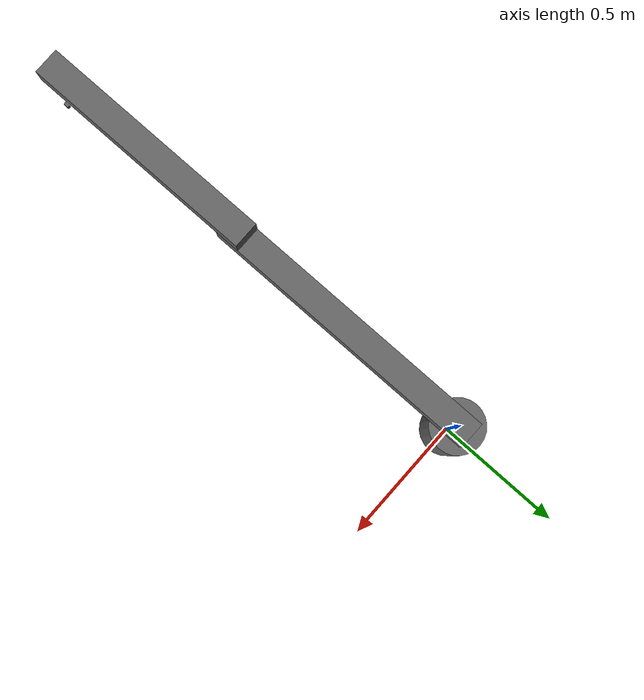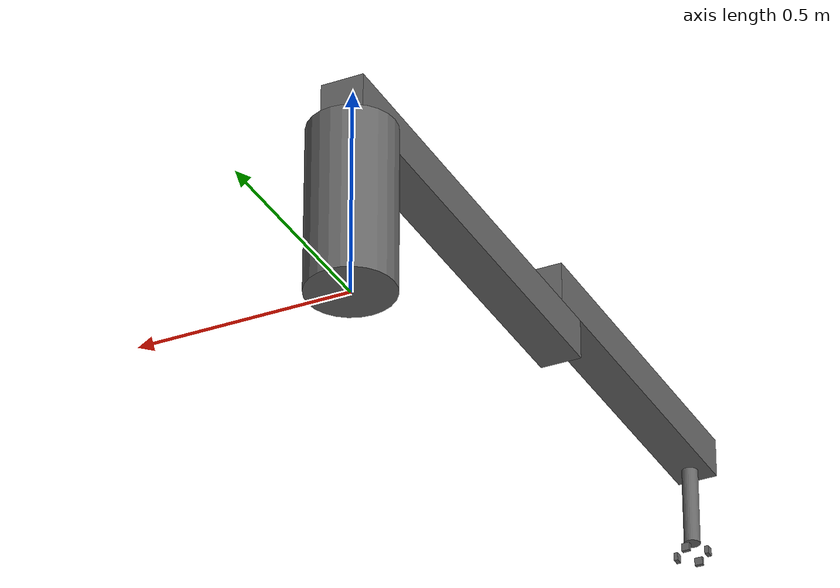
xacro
<?xml version="1.0"?>
<robot xmlns:xacro="http://www.ros.org/wiki/xacro" name="scara_robot">
    <xacro:include filename="$(find robot_description)/urdf/base.urdf.xacro"/>
    <xacro:include filename="$(find robot_description)/urdf/robot.ros2_control.xacro"/>

    <xacro:base_xacro/>
    <xacro:robot_ros2_control/>
</robot>

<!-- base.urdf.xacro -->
<robot xmlns:xacro="http://www.ros.org/wiki/xacro">
    <xacro:macro name="base_xacro">
        <link name="world"/>
        <joint name="joint_fix" type="fixed">
            <parent link="world"/>
            <child link="base_link"/>
        </joint>

        <link name="base_link">
            <collision>
                <origin xyz="0 0 0.2" rpy="0 0 0"/>
                <geometry>
                    <cylinder length="0.4" radius="0.1"/>
                </geometry>
            </collision>
            <visual>
                <origin xyz="0 0 0.2" rpy="0 0 0"/>
                <geometry>
                    <cylinder length="0.4" radius="0.1"/>
                </geometry>
                <material name="dark_gray">
                    <color rgba="0.4 0.4 0.4 1.0"/>
                </material>
            </visual>
            <inertial>
                <origin xyz="0 0 0.2" rpy="0 0 0"/>
                <mass value="2.0"/>
                <inertia ixx="0.0317" ixy="0.0" ixz="0.0" iyy="0.0317" iyz="0.0" izz="0.01"/>
            </inertial>
        </link>
        <gazebo reference="base_link">
            <material>Gazebo/White</material>
        </gazebo>

        <joint name="rotation1" type="revolute">
            <parent link="base_link"/>
            <child link="arm1"/>
            <origin xyz="0 0 0.4" rpy="0 0 0"/>
            <axis xyz="0 0 1"/>
            <limit effort="20" velocity="2.0" lower="-2.6" upper="2.6"/>
            <dynamics damping="0.1" friction="0.05"/>
        </joint>

        <link name="arm1">
            <collision>
                <origin xyz="0 -0.5 0.05" rpy="0 0 0"/>
                <geometry>
                    <box size="0.1 1.1 0.1"/>
                </geometry>
            </collision>
            <visual>
                <origin xyz="0 -0.5 0.05" rpy="0 0 0"/>
                <geometry>
                    <box size="0.1 1.1 0.1"/>
                </geometry>
                <material name="dark_gray">
                    <color rgba="0.4 0.4 0.4 1.0"/>
                </material>
            </visual>
            <inertial>
                <origin xyz="0 -0.5 0.05" rpy="0 0 0"/>
                <mass value="1.5"/>
                <inertia ixx="0.1525" ixy="0.0" ixz="0.0" iyy="0.0025" iyz="0.0" izz="0.1525"/>
            </inertial>
        </link>
        <gazebo reference="arm1">
            <material>Gazebo/White</material>
        </gazebo>

        <joint name="rotation2" type="revolute">
            <parent link="arm1"/>
            <child link="arm2"/>
            <origin xyz="0 -1.0 0.1" rpy="0 0 0"/>
            <axis xyz="0 0 1"/>
            <limit effort="15" velocity="2.0" lower="-3.00" upper="3.00"/>
            <dynamics damping="0.1" friction="0.05"/>
        </joint>

        <link name="arm2">
            <collision>
                <origin xyz="0 -0.4 0.05" rpy="0 0 0"/>
                <geometry>
                    <box size="0.1 0.9 0.1"/>
                </geometry>
            </collision>
            <visual>
                <origin xyz="0 -0.4 0.05" rpy="0 0 0"/>
                <geometry>
                    <box size="0.1 0.9 0.1"/>
                </geometry>
                <material name="dark_gray">
                    <color rgba="0.4 0.4 0.4 1.0"/>
                </material>
            </visual>
            <inertial>
                <origin xyz="0 -0.4 0.05" rpy="0 0 0"/>
                <mass value="1.0"/>
                <inertia ixx="0.0683" ixy="0.0" ixz="0.0" iyy="0.00167" iyz="0.0" izz="0.0683"/>
            </inertial>
        </link>
        <gazebo reference="arm2">
            <material>Gazebo/White</material>
        </gazebo>

        <joint name="gripper_joint" type="prismatic">
            <parent link="arm2"/>
            <child link="gripper_link"/>
            <origin xyz="0 -0.8 0" rpy="0 0 0"/>
            <axis xyz="0 0 1"/>
            <limit effort="10" velocity="0.1" lower="-0.8" upper="0.0"/>
            <dynamics damping="0.1" friction="0.05"/>
        </joint>

        <link name="gripper_link">
            <collision>
                <origin xyz="0 0 -0.1" rpy="0 0 0"/>
                <geometry>
                    <cylinder length="0.2" radius="0.02"/>
                </geometry>
            </collision>
            <visual>
                <origin xyz="0 0 -0.1" rpy="0 0 0"/>
                <geometry>
                    <cylinder length="0.2" radius="0.02"/>
                </geometry>
                <material name="dark_gray">
                    <color rgba="0.4 0.4 0.4 1.0"/>
                </material>
            </visual>
            <inertial>
                <origin xyz="0 0 -0.1" rpy="0 0 0"/>
                <mass value="0.5"/>
                <inertia ixx="0.00172" ixy="0.0" ixz="0.0" iyy="0.00172" iyz="0.0" izz="0.0001"/>
            </inertial>
        </link>
        <gazebo reference="gripper_link">
            <material>Gazebo/White</material>
        </gazebo>

        <joint name="finger1_joint" type="prismatic">
            <parent link="gripper_link"/>
            <child link="finger1"/>
            <origin xyz="0 -0.04 -0.23" rpy="0 0 0"/>
            <axis xyz="0 1 0"/>
            <limit effort="20" velocity="0.05" lower="0.0" upper="0.02"/>
            <dynamics damping="0.5" friction="0.1"/>
        </joint>
        <link name="finger1">
            <collision>
                <origin xyz="0 0 0" rpy="0 0 0"/>
                <geometry>
                    <box size="0.02 0.01 0.02"/>
                </geometry>
            </collision>
            <visual>
                <origin xyz="0 0 0" rpy="0 0 0"/>
                <geometry>
                    <box size="0.02 0.01 0.02"/>
                </geometry>
                <material name="dark_gray">
                    <color rgba="0.4 0.4 0.4 1.0"/>
                </material>
            </visual>
            <inertial>
                <origin xyz="0 0 0" rpy="0 0 0"/>
                <mass value="0.1"/>
                <inertia ixx="4.17e-6" ixy="0.0" ixz="0.0" iyy="6.67e-6" iyz="0.0" izz="4.17e-6"/>
            </inertial>
        </link>
        <gazebo reference="finger1">
            <material>Gazebo/White</material>
            <mu1 value="20.0" />
            <mu2 value="20.0" />
            <kp value="1000000000.0" />
            <kd value="1.0" />
        </gazebo>

        <joint name="finger2_joint" type="prismatic">
            <parent link="gripper_link"/>
            <child link="finger2"/>
            <origin xyz="0.04 0 -0.23" rpy="0 0 0"/>
            <axis xyz="1 0 0"/>
            <limit effort="5" velocity="0.05" lower="-0.02" upper="0.0"/>
            <dynamics damping="0.1" friction="0.01"/>
        </joint>
        <link name="finger2">
            <collision>
                <origin xyz="0 0 0" rpy="0 0 0"/>
                <geometry>
                    <box size="0.01 0.02 0.02"/>
                </geometry>
            </collision>
            <visual>
                <origin xyz="0 0 0" rpy="0 0 0"/>
                <geometry>
                    <box size="0.01 0.02 0.02"/>
                </geometry>
                <material name="dark_gray">
                    <color rgba="0.4 0.4 0.4 1.0"/>
                </material>
            </visual>
            <inertial>
                <origin xyz="0 0 0" rpy="0 0 0"/>
                <mass value="0.1"/>
                <inertia ixx="6.67e-6" ixy="0.0" ixz="0.0" iyy="4.17e-6" iyz="0.0" izz="4.17e-6"/>
            </inertial>
        </link>
        <gazebo reference="finger2">
            <material>Gazebo/White</material>
            <mu1 value="20.0" />
            <mu2 value="20.0" />
            <kp value="1000000000.0" />
            <kd value="1.0" />
        </gazebo>

        <joint name="finger3_joint" type="prismatic">
            <parent link="gripper_link"/>
            <child link="finger3"/>
            <origin xyz="0 0.04 -0.23" rpy="0 0 0"/>
            <axis xyz="0 1 0"/>
            <limit effort="5" velocity="0.05" lower="-0.02" upper="0.0"/>
            <dynamics damping="0.1" friction="0.01"/>
        </joint>
        <link name="finger3">
            <collision>
                <origin xyz="0 0 0" rpy="0 0 0"/>
                <geometry>
                    <box size="0.02 0.01 0.02"/>
                </geometry>
            </collision>
            <visual>
                <origin xyz="0 0 0" rpy="0 0 0"/>
                <geometry>
                    <box size="0.02 0.01 0.02"/>
                </geometry>
                <material name="dark_gray">
                    <color rgba="0.4 0.4 0.4 1.0"/>
                </material>
            </visual>
            <inertial>
                <origin xyz="0 0 0" rpy="0 0 0"/>
                <mass value="0.1"/>
                <inertia ixx="4.17e-6" ixy="0.0" ixz="0.0" iyy="6.67e-6" iyz="0.0" izz="4.17e-6"/>
            </inertial>
        </link>
        <gazebo reference="finger3">
            <material>Gazebo/White</material>
            <mu1 value="20.0" />
            <mu2 value="20.0" />
            <kp value="1000000000.0" />
            <kd value="1.0" />
        </gazebo>

        <joint name="finger4_joint" type="prismatic">
            <parent link="gripper_link"/>
            <child link="finger4"/>
            <origin xyz="-0.04 0 -0.23" rpy="0 0 0"/>
            <axis xyz="1 0 0"/>
            <limit effort="5" velocity="0.05" lower="0.0" upper="0.02"/>
            <dynamics damping="0.1" friction="0.01"/>
        </joint>
        <link name="finger4">
            <collision>
                <origin xyz="0 0 0" rpy="0 0 0"/>
                <geometry>
                    <box size="0.01 0.02 0.02"/>
                </geometry>
            </collision>
            <visual>
                <origin xyz="0 0 0" rpy="0 0 0"/>
                <geometry>
                    <box size="0.01 0.02 0.02"/>
                </geometry>
                <material name="dark_gray">
                    <color rgba="0.4 0.4 0.4 1.0"/>
                </material>
            </visual>
            <inertial>
                <origin xyz="0 0 0" rpy="0 0 0"/>
                <mass value="0.1"/>
                <inertia ixx="6.67e-6" ixy="0.0" ixz="0.0" iyy="4.17e-6" iyz="0.0" izz="4.17e-6"/>
            </inertial>
        </link>
        <gazebo reference="finger4">
            <material>Gazebo/White</material>
            <mu1 value="20.0" />
            <mu2 value="20.0" />
            <kp value="1000000000.0" />
            <kd value="1.0" />
        </gazebo>

    </xacro:macro>
</robot>
